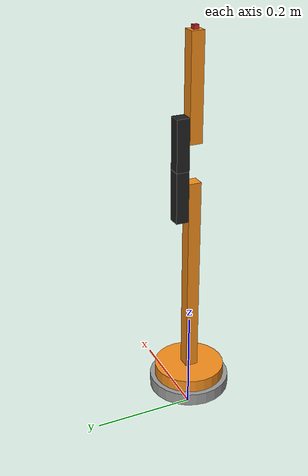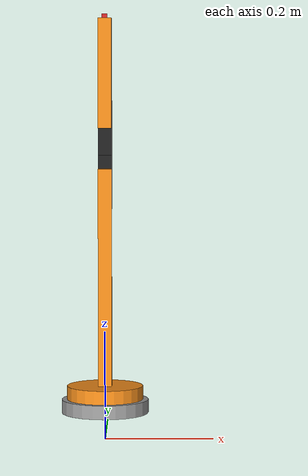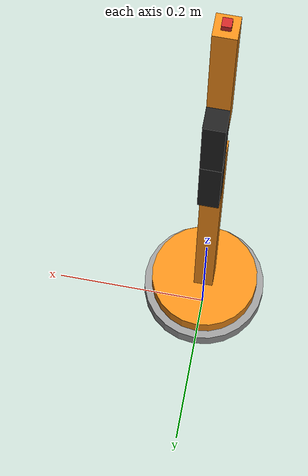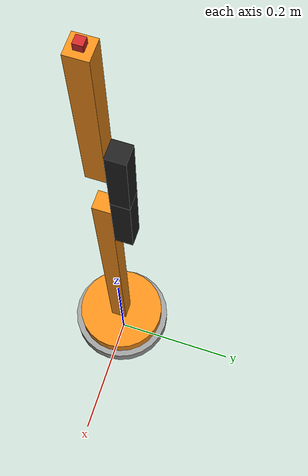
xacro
<?xml version="1.0"?>
<!-- Revolute-Revolute Manipulator -->
<robot name="robotarm101" xmlns:xacro="http://www.ros.org/wiki/xacro">

  <!-- Constants for robot dimensions -->
  <xacro:property name="PI" value="3.1415926535897931"/>
  <xacro:property name="ground_height" value="0.0625" /> <!-- arbitrary value for ground_height -->
  <xacro:property name="arm_base_mass" value="0.25" /> <!-- arbitrary value for arm_base_mass -->
  <xacro:property name="arm_base_radius" value="0.08" /> <!-- arbitrary value for arm_base_radius -->
  <xacro:property name="arm_base_height" value="0.025" /> <!-- arbitrary value for arm_base_height -->
  <xacro:property name="rotation_base_mass" value="0.25" /> <!-- arbitrary value for rotation_base_mass -->
  <xacro:property name="rotation_base_radius" value="0.07" /> <!-- arbitrary value for rotation_base_radius -->
  <xacro:property name="rotation_base_height" value="0.025" /> <!-- arbitrary value for rotation_base_height -->
  <xacro:property name="mass1" value="0.2" />     <!-- arbitrary value for mass1 -->
  <xacro:property name="mass2" value="0.2" />     <!-- arbitrary value for mass2 -->
  <xacro:property name="mass3" value="0.2" />     <!-- arbitrary value for mass3 -->
  <xacro:property name="mass4" value="0.002" />     <!-- arbitrary value for mass4 -->
  <xacro:property name="width" value="0.025" />    <!-- Square dimensions (widthxwidth) of beams -->
  <xacro:property name="height1" value="0.4" />   <!-- Link 1 -->
  <xacro:property name="height2" value="0.1" />   <!-- Link 2 -->
  <xacro:property name="height3" value="0.2" />  <!-- Link 3 -->
  <xacro:property name="end_effector" value="0.01" />  <!-- end_effector -->
  <xacro:property name="camera_link" value="0.01" /> <!-- Size of square 'camera' box -->
  <xacro:property name="axel_offset" value="0.025" /> <!-- Space btw top of beam and the each joint -->

  <!-- Import all Gazebo-customization elements, including Gazebo colors -->
  <xacro:include filename="$(find robotarm101_description)/urdf/robotarm101.gazebo" />

  <!-- Import Rviz colors -->
  <xacro:include filename="$(find robotarm101_description)/urdf/materials.xacro" />

  <!-- Used for fixing robot to Gazebo 'base_link' -->
  <link name="world"/>

  <!-- arm_base Link -->
  <link name="arm_base">
    <collision>
      <origin xyz="0 0 ${ground_height}" rpy="0 0 0"/>
      <geometry>
	      <cylinder radius="${arm_base_radius}" length="${arm_base_height}"/>
      </geometry>
    </collision>
    <visual>
      <origin xyz="0 0 ${ground_height}" rpy="0 0 0"/>
      <geometry>
	      <cylinder radius="${arm_base_radius}" length="${arm_base_height}"/>
      </geometry>
      <material name="grey"/>
    </visual>
    <inertial>
      <origin xyz="0 0 ${ground_height}" rpy="0 0 0"/>
      <mass value="${arm_base_mass}"/>
      <inertia
        ixx="${(1.0/12.0)*(arm_base_mass)*(arm_base_height*arm_base_height) + (1.0/4.0)*(arm_base_mass)*(arm_base_radius*arm_base_radius)}" ixy="0.0" ixz="0.0"
        iyx="0.0" iyy="${(1.0/12.0)*(arm_base_mass)*(arm_base_height*arm_base_height) + (1.0/4.0)*(arm_base_mass)*(arm_base_radius*arm_base_radius)}" iyz="0.0"
        izx="0.0" izy="0.0" izz="${(1.0/2.0)*(arm_base_mass)*(arm_base_radius*arm_base_radius)}"/>
    </inertial>
  </link>

  <!-- rotation_base Link -->
  <link name="rotation_base">
    <collision>
      <origin xyz="0 0 ${ground_height + arm_base_height}" rpy="0 0 0"/>
      <geometry>
	      <cylinder radius="${rotation_base_radius}" length="${rotation_base_height}"/>
      </geometry>
    </collision>
    <visual>
      <origin xyz="0 0 ${ground_height + arm_base_height}" rpy="0 0 0"/>
      <geometry>
	      <cylinder radius="${rotation_base_radius}" length="${rotation_base_height}"/>
      </geometry>
      <material name="orange"/>
    </visual>
    <inertial>
      <origin xyz="0 0 ${ground_height + arm_base_height}" rpy="0 0 0"/>
      <mass value="${rotation_base_mass}"/>
      <inertia
        ixx="${(1.0/12.0)*(rotation_base_mass)*(rotation_base_height*rotation_base_height) + (1.0/4.0)*(rotation_base_mass)*(rotation_base_radius*rotation_base_radius)}" ixy="0.0" ixz="0.0"
        iyx="0.0" iyy="${(1.0/12.0)*(rotation_base_mass)*(rotation_base_height*rotation_base_height) + (1.0/4.0)*(rotation_base_mass)*(rotation_base_radius*rotation_base_radius)}" iyz="0.0"
        izx="0.0" izy="0.0" izz="${(1.0/2.0)*(rotation_base_mass)*(rotation_base_radius*rotation_base_radius)}"/>
    </inertial>
  </link>

  <!-- upper arm Link -->
  <link name="link1">
    <collision>
      <origin xyz="0 0 ${height1/2}" rpy="0 0 0"/>
      <geometry>
	      <box size="${width} ${width} ${height1}"/>
      </geometry>
    </collision>
    <visual>
      <origin xyz="0 0 ${height1/2}" rpy="0 0 0"/>
      <geometry>
	      <box size="${width} ${width} ${height1}"/>
      </geometry>
      <material name="orange"/>
    </visual>
    <inertial>
      <origin xyz="0 0 ${height1/2}" rpy="0 0 0"/>
      <mass value="${mass1}"/>
      <inertia
        ixx="${mass1 / 12.0 * (width*width + height1*height1)}" ixy="0.0" ixz="0.0"
        iyy="${mass1 / 12.0 * (height1*height1 + width*width)}" iyz="0.0"
        izz="${mass1 / 12.0 * (width*width + width*width)}"/>
    </inertial>
  </link>

  <!-- upper-middle arm Link -->
  <link name="link2_upper">
    <collision>
      <origin xyz="0 0 ${height2/2 - axel_offset}" rpy="0 0 0"/>
      <geometry>
	      <box size="${width} ${width} ${height2}"/>
      </geometry>
    </collision>
    <visual>
      <origin xyz="0 0 ${height2/2 - axel_offset}" rpy="0 0 0"/>
      <geometry>
	      <box size="${width} ${width} ${height2}"/>
      </geometry>
      <material name="black"/>
    </visual>
    <inertial>
      <origin xyz="0 0 ${height2/2 - axel_offset}" rpy="0 0 0"/>
      <mass value="${mass2}"/>
      <inertia
        ixx="${mass2 / 12.0 * (width*width + height2*height2)}" ixy="0.0" ixz="0.0"
        iyy="${mass2 / 12.0 * (height2*height2 + width*width)}" iyz="0.0"
        izz="${mass2 / 12.0 * (width*width + width*width)}"/>
    </inertial>
  </link>

  <!-- lower-middle arm Link -->
  <link name="link2_lower">
    <collision>
      <origin xyz="0 0 ${height2/2 - axel_offset}" rpy="0 0 0"/>
      <geometry>
	      <box size="${width} ${width} ${height2}"/>
      </geometry>
    </collision>
    <visual>
      <origin xyz="0 0 ${height2/2 - axel_offset}" rpy="0 0 0"/>
      <geometry>
	      <box size="${width} ${width} ${height2}"/>
      </geometry>
      <material name="black"/>
    </visual>
    <inertial>
      <origin xyz="0 0 ${height2/2 - axel_offset}" rpy="0 0 0"/>
      <mass value="${mass2}"/>
      <inertia
        ixx="${mass2 / 12.0 * (width*width + height2*height2)}" ixy="0.0" ixz="0.0"
        iyy="${mass2 / 12.0 * (height2*height2 + width*width)}" iyz="0.0"
        izz="${mass2 / 12.0 * (width*width + width*width)}"/>
    </inertial>
  </link>

  <!-- lower arm -->
  <link name="link3">
    <collision>
      <origin xyz="0 0 ${height3/2 - axel_offset}" rpy="0 0 0"/>
      <geometry>
	      <box size="${width} ${width} ${height3}"/>
      </geometry>
    </collision>
    <visual>
      <origin xyz="0 0 ${height3/2 - axel_offset}" rpy="0 0 0"/>
      <geometry>
	      <box size="${width} ${width} ${height3}"/>
      </geometry>
      <material name="orange"/>
    </visual>
    <inertial>
      <origin xyz="0 0 ${height3/2 - axel_offset}" rpy="0 0 0"/>
      <mass value="${mass3}"/>
      <inertia
        ixx="${mass3 / 12.0 * (width*width + height3*height3)}" ixy="0.0" ixz="0.0"
        iyy="${mass3 / 12.0 * (height3*height3 + width*width)}" iyz="0.0"
        izz="${mass3 / 12.0 * (width*width + width*width)}"/>
    </inertial>
  </link>

  <!-- Camera link, physical movement -->
  <link name="camera_link">
    <collision>
      <origin xyz="0 0 0" rpy="0 0 0"/>
      <geometry>
    	  <box size="${camera_link} ${camera_link} ${camera_link}"/>
      </geometry>
    </collision>
    <visual>
      <origin xyz="0 0 0" rpy="0 0 0"/>
      <geometry>
	      <box size="${camera_link} ${camera_link} ${camera_link}"/>
      </geometry>
    </visual>
    <inertial>
      <mass value="1e-5" />
      <origin xyz="0 0 0" rpy="0 0 0"/>
      <inertia ixx="1e-6" ixy="0" ixz="0" iyy="1e-6" iyz="0" izz="1e-6" />
    </inertial>
  </link>

  <!-- Camera link, optical movement -->
  <link name="camera_link_optical">
    <origin xyz="0 0 0" rpy="0 0 0"/>
  </link>

  <!-- joint between world and arm_base, fixed -->
  <joint name="arm_base" type="fixed">
    <parent link="world"/>
    <child link="arm_base"/>
  </joint>

  <!-- joint between arm_base and rotation_base for the yawing motion -->
  <joint name="rotation_base" type="revolute">
    <parent link="arm_base"/>
    <child link="rotation_base"/>
    <axis xyz="0 0 1"/>
    <dynamics damping="0.7"/>
    <limit effort="100000.0" lower="-${PI/2}" upper="${PI/2}" velocity="0.5" />
  </joint>

  <!-- joint between rotation_base and shoulder for the shoulder motion -->
  <joint name="shoulder" type="revolute">
    <parent link="rotation_base"/>
    <child link="link1"/>
    <origin xyz="0 0 ${ground_height + arm_base_height + axel_offset/2}" rpy="0 0 0"/>
    <axis xyz="0 1 0"/>
    <dynamics damping="0.7"/>
    <limit effort="100000.0" lower="-${PI/2}" upper="${PI/2}" velocity="0.5" />
  </joint>

  <!-- joint between shoulder and elbow for the elbow motion -->
  <joint name="joint1" type="revolute">
    <parent link="link1"/>
    <child link="link2_upper"/>
    <origin xyz="0 ${width} ${height1 - axel_offset*2}" rpy="0 0 0"/>
    <axis xyz="0 1 0"/>
    <dynamics damping="0.7"/>
    <limit effort="5000.0" lower="-${PI/2}" upper="${PI/2}" velocity="0.5" />
  </joint>

  <!-- joint between upper and lower elbow for the rotation -->
  <joint name="joint2_rotation" type="continuous">
    <parent link="link2_upper"/>
    <child link="link2_lower"/>
    <origin xyz="0 0 ${height2}" rpy="0 0 0"/>
    <axis xyz="0 0 1"/>
  </joint>

  <!-- joint between lower elbow and wrist for the wrist motion -->
  <joint name="joint2" type="revolute">
    <parent link="link2_lower"/>
    <child link="link3"/>
    <origin xyz="0 -${width} ${height2 - axel_offset*2}" rpy="0 0 0"/>
    <axis xyz="0 1 0"/>
    <dynamics damping="0.7"/>
    <limit effort="5000.0" lower="-${PI/2}" upper="${PI/2}" velocity="0.5" />
  </joint>

  <!-- joint camera -->
  <joint name="camera_joint" type="continuous">
    <axis xyz="1 0 0" />
    <origin xyz="0 0 ${height3 - camera_link - axel_offset/2}" rpy="0 -${PI/2} 0"/>
    <parent link="link3"/>
    <child link="camera_link"/>
  </joint>

  <!-- generate an optical frame http://www.ros.org/reps/rep-0103.html#suffix-frames
      so that ros and opencv can operate on the camera frame correctly -->
  <joint name="camera_optical_joint" type="fixed">
    <origin xyz="0 0 1" rpy="0 0 0"/>
    <parent link="camera_link"/>
    <child link="camera_link_optical"/>
  </joint>

  <!-- transmission, for the yawing motion -->
  <transmission name="tran_base">
    <type>transmission_interface/SimpleTransmission</type>
    <joint name="rotation_base">
      <hardwareInterface>hardware_interface/EffortJointInterface</hardwareInterface>
    </joint>
    <actuator name="motor_base">
      <hardwareInterface>hardware_interface/EffortJointInterface</hardwareInterface>
      <mechanicalReduction>1</mechanicalReduction>
    </actuator>
  </transmission>

  <!-- transmission, for the shoulder motion -->
  <transmission name="tran_shoulder">
    <type>transmission_interface/SimpleTransmission</type>
    <joint name="shoulder">
      <hardwareInterface>hardware_interface/EffortJointInterface</hardwareInterface>
    </joint>
    <actuator name="motor_shoulder">
      <hardwareInterface>hardware_interface/EffortJointInterface</hardwareInterface>
      <mechanicalReduction>1</mechanicalReduction>
    </actuator>
  </transmission>

  <!-- transmission, for the elbow motion -->
  <transmission name="tran1">
    <type>transmission_interface/SimpleTransmission</type>
    <joint name="joint1">
      <hardwareInterface>hardware_interface/EffortJointInterface</hardwareInterface>
    </joint>
    <actuator name="motor1">
      <hardwareInterface>hardware_interface/EffortJointInterface</hardwareInterface>
      <mechanicalReduction>1</mechanicalReduction>
    </actuator>
  </transmission>

  <!-- transmission, for the rotation -->
  <transmission name="tran2_rotation">
    <type>transmission_interface/SimpleTransmission</type>
    <joint name="joint2_rotation">
      <hardwareInterface>hardware_interface/EffortJointInterface</hardwareInterface>
    </joint>
    <actuator name="motor2_rotation">
      <hardwareInterface>hardware_interface/EffortJointInterface</hardwareInterface>
      <mechanicalReduction>1</mechanicalReduction>
    </actuator>
  </transmission>

  <!-- transmission, for the wrist motion -->
  <transmission name="tran2">
    <type>transmission_interface/SimpleTransmission</type>
    <joint name="joint2">
      <hardwareInterface>hardware_interface/EffortJointInterface</hardwareInterface>
    </joint>
    <actuator name="motor2">
      <hardwareInterface>hardware_interface/EffortJointInterface</hardwareInterface>
      <mechanicalReduction>1</mechanicalReduction>
    </actuator>
  </transmission>

  <!-- transmission, for the end-effector motion -->
  <transmission name="tran3">
    <type>transmission_interface/SimpleTransmission</type>
    <joint name="camera_joint">
      <hardwareInterface>hardware_interface/EffortJointInterface</hardwareInterface>
    </joint>
    <actuator name="motor3">
      <hardwareInterface>hardware_interface/EffortJointInterface</hardwareInterface>
      <mechanicalReduction>1</mechanicalReduction>
    </actuator>
  </transmission>

</robot>
